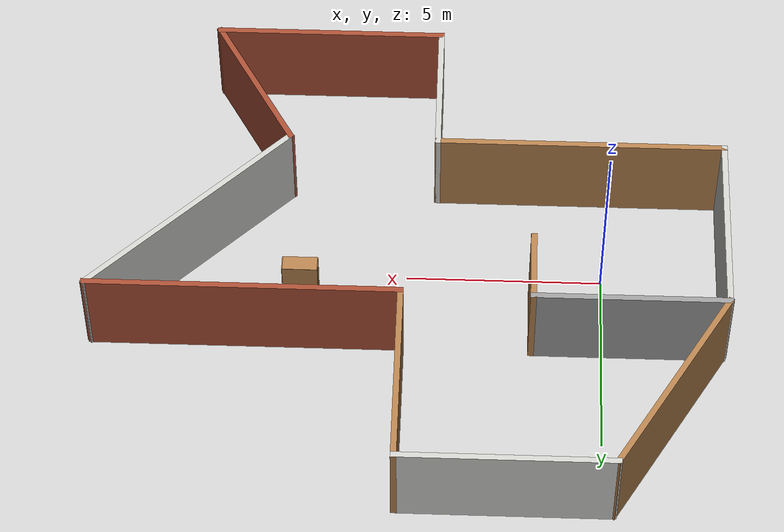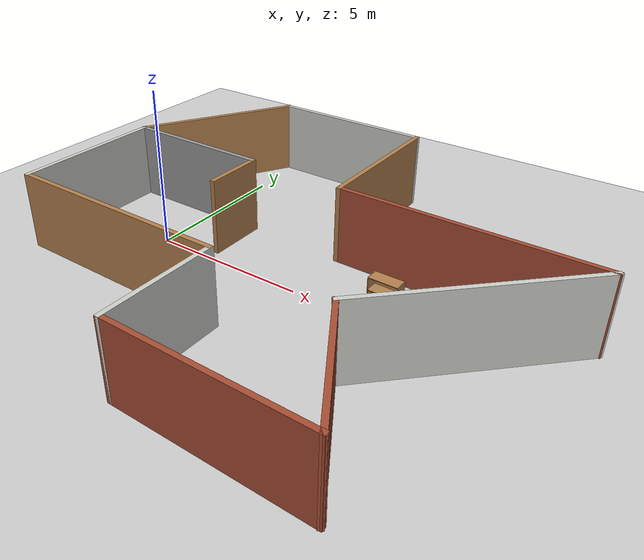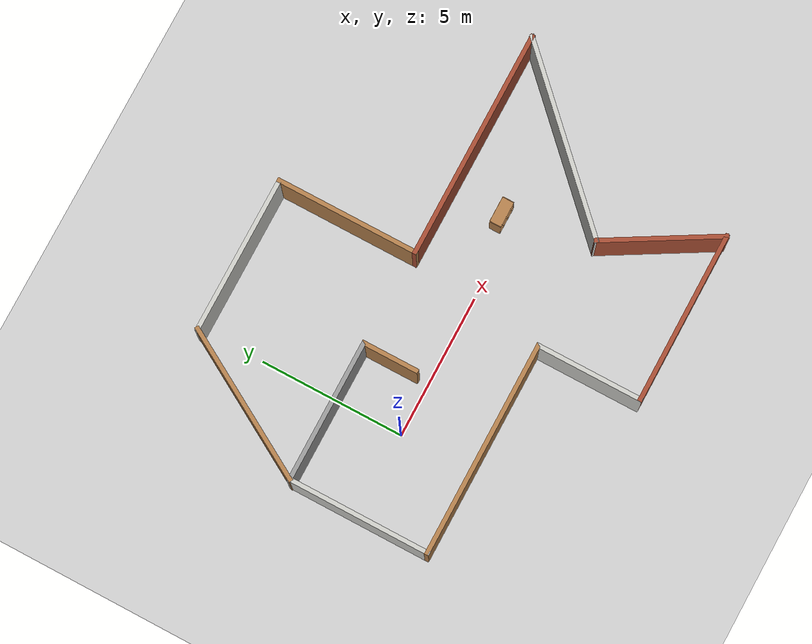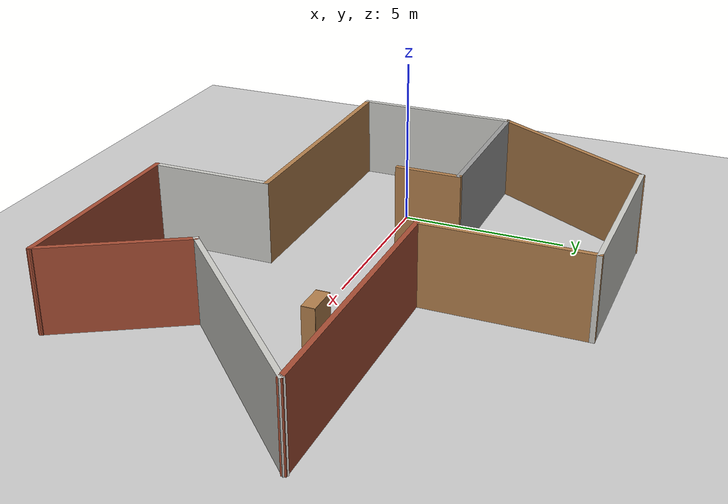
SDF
<sdf version="1.6">
 <world name="default">
  <light name="sun" type="directional">
   <pose>0 0 10 0 -0 0</pose>
   <diffuse>0.8 0.8 0.8 1</diffuse>
   <specular>0.2 0.2 0.2 1</specular>
   <attenuation>
    <range>1000</range>
    <constant>0.9</constant>
    <linear>0.01</linear>
    <quadratic>0.001</quadratic>
   </attenuation>
   <direction>-0.5 0.1 -0.9</direction>
  </light>
  <model name="ground_plane">
   <static>1</static>
   <link name="link">
    <collision name="collision">
     <geometry><plane><normal>0 0 1</normal><size>100 100</size></plane></geometry>
     <surface>
      <contact><collide_bitmask>65535</collide_bitmask></contact>
      <friction><ode><mu>100</mu><mu2>50</mu2></ode></friction>
     </surface>
    </collision>
    <visual name="visual">
     <cast_shadows>0</cast_shadows>
     <geometry><plane><normal>0 0 1</normal><size>100 100</size></plane></geometry>
     <material>
      <script><uri>file://media/materials/scripts/gazebo.material</uri><name>Gazebo/Grey</name></script>
     </material>
    </visual>
   </link>
  </model>
  <gravity>0 0 -9.8</gravity>
  <magnetic_field>6e-06 2.3e-05 -4.2e-05</magnetic_field>
  <atmosphere type="adiabatic"/>
  <physics name="default_physics" default="0" type="ode">
   <max_step_size>0.001</max_step_size>
   <real_time_factor>1</real_time_factor>
   <real_time_update_rate>1000</real_time_update_rate>
  </physics>
  <scene><ambient>0.4 0.4 0.4 1</ambient><background>0.7 0.7 0.7 1</background><shadows>1</shadows></scene>
  <audio><device>default</device></audio>
  <spherical_coordinates>
   <surface_model>EARTH_WGS84</surface_model>
   <latitude_deg>0</latitude_deg>
   <longitude_deg>0</longitude_deg>
   <elevation>0</elevation>
   <heading_deg>0</heading_deg>
  </spherical_coordinates>
  <model name="last_world">
   <pose>4.93439 0.423874 0 0 -0 0</pose>
   <link name="Wall_1">
    <collision name="Wall_1_Collision">
     <geometry><box><size>5 0.15 2.5</size></box></geometry>
     <pose>0 0 1.25 0 -0 0</pose>
    </collision>
    <visual name="Wall_1_Visual">
     <pose>0 0 1.25 0 -0 0</pose>
     <geometry><box><size>5 0.15 2.5</size></box></geometry>
     <material>
      <script><uri>file://media/materials/scripts/gazebo.material</uri><name>Gazebo/CeilingTiled</name></script>
      <ambient>1 1 1 1</ambient>
     </material>
     <meta><layer>0</layer></meta>
    </visual>
    <pose>-7.99859 -0.597247 0 0 -0 1.5708</pose>
   </link>
   <link name="Wall_10">
    <collision name="Wall_10_Collision">
     <geometry><box><size>7 0.15 2.5</size></box></geometry>
     <pose>0 0 1.25 0 -0 0</pose>
    </collision>
    <visual name="Wall_10_Visual">
     <pose>0 0 1.25 0 -0 0</pose>
     <geometry><box><size>7 0.15 2.5</size></box></geometry>
     <material>
      <script><uri>file://media/materials/scripts/gazebo.material</uri><name>Gazebo/CeilingTiled</name></script>
      <ambient>1 1 1 1</ambient>
     </material>
     <meta><layer>0</layer></meta>
    </visual>
    <pose>5.57325 -0.649703 0 0 -0 0.785398</pose>
   </link>
   <link name="Wall_11">
    <collision name="Wall_11_Collision">
     <geometry><box><size>8 0.15 2.5</size></box></geometry>
     <pose>0 0 1.25 0 -0 0</pose>
    </collision>
    <visual name="Wall_11_Visual">
     <pose>0 0 1.25 0 -0 0</pose>
     <geometry><box><size>8 0.15 2.5</size></box></geometry>
     <material>
      <script><uri>file://media/materials/scripts/gazebo.material</uri><name>Gazebo/Bricks</name></script>
      <ambient>1 1 1 1</ambient>
     </material>
     <meta><layer>0</layer></meta>
    </visual>
    <pose>4.07009 1.77214 0 0 -0 3.14159</pose>
   </link>
   <link name="Wall_17">
    <collision name="Wall_17_Collision">
     <geometry><box><size>5 0.15 2.5</size></box></geometry>
     <pose>0 0 1.25 0 -0 0</pose>
    </collision>
    <visual name="Wall_17_Visual">
     <pose>0 0 1.25 0 -0 0</pose>
     <geometry><box><size>5 0.15 2.5</size></box></geometry>
     <material>
      <script><uri>file://media/materials/scripts/gazebo.material</uri><name>Gazebo/Wood</name></script>
      <ambient>1 1 1 1</ambient>
     </material>
     <meta><layer>0</layer></meta>
    </visual>
    <pose>0.145088 4.19714 0 0 -0 1.5708</pose>
   </link>
   <link name="Wall_18">
    <collision name="Wall_18_Collision">
     <geometry><box><size>5.5 0.15 2.5</size></box></geometry>
     <pose>0 0 1.25 0 -0 0</pose>
    </collision>
    <visual name="Wall_18_Visual">
     <pose>0 0 1.25 0 -0 0</pose>
     <geometry><box><size>5.5 0.15 2.5</size></box></geometry>
     <material>
      <script><uri>file://media/materials/scripts/gazebo.material</uri><name>Gazebo/CeilingTiled</name></script>
      <ambient>1 1 1 1</ambient>
     </material>
     <meta><layer>0</layer></meta>
    </visual>
    <pose>-2.52991 6.62214 0 0 -0 3.14159</pose>
   </link>
   <link name="Wall_19">
    <collision name="Wall_19_Collision">
     <geometry><box><size>5.69895 0.15 2.5</size></box></geometry>
     <pose>0 0 1.25 0 -0 0</pose>
    </collision>
    <visual name="Wall_19_Visual">
     <pose>0 0 1.25 0 -0 0</pose>
     <geometry><box><size>5.69895 0.15 2.5</size></box></geometry>
     <material>
      <script><uri>file://media/materials/scripts/gazebo.material</uri><name>Gazebo/Wood</name></script>
      <ambient>1 1 1 1</ambient>
     </material>
     <meta><layer>0</layer></meta>
    </visual>
    <pose>-6.60175 4.22494 0 0 -0 -2.0984</pose>
   </link>
   <link name="Wall_2">
    <collision name="Wall_2_Collision">
     <geometry><box><size>5 0.15 2.5</size></box></geometry>
     <pose>0 0 1.25 0 -0 0</pose>
    </collision>
    <visual name="Wall_2_Visual">
     <pose>0 0 1.25 0 -0 0</pose>
     <geometry><box><size>5 0.15 2.5</size></box></geometry>
     <material>
      <script><uri>file://media/materials/scripts/gazebo.material</uri><name>Gazebo/Grey</name></script>
      <ambient>1 1 1 1</ambient>
     </material>
     <meta><layer>0</layer></meta>
    </visual>
    <pose>-5.57359 1.82775 0 0 -0 0</pose>
   </link>
   <link name="Wall_3">
    <collision name="Wall_3_Collision">
     <geometry><box><size>2 0.15 2.5</size></box></geometry>
     <pose>0 0 1.25 0 -0 0</pose>
    </collision>
    <visual name="Wall_3_Visual">
     <pose>0 0 1.25 0 -0 0</pose>
     <geometry><box><size>2 0.15 2.5</size></box></geometry>
     <material>
      <script><uri>file://media/materials/scripts/gazebo.material</uri><name>Gazebo/Wood</name></script>
      <ambient>1 1 1 1</ambient>
     </material>
     <meta><layer>0</layer></meta>
    </visual>
    <pose>-3.14859 0.902753 0 0 -0 -1.5708</pose>
   </link>
   <link name="Wall_5">
    <collision name="Wall_5_Collision">
     <geometry><box><size>7.5 0.15 2.5</size></box></geometry>
     <pose>0 0 1.25 0 -0 0</pose>
    </collision>
    <visual name="Wall_5_Visual">
     <pose>0 0 1.25 0 -0 0</pose>
     <geometry><box><size>7.5 0.15 2.5</size></box></geometry>
     <material>
      <script><uri>file://media/materials/scripts/gazebo.material</uri><name>Gazebo/Wood</name></script>
      <ambient>1 1 1 1</ambient>
     </material>
     <meta><layer>0</layer></meta>
    </visual>
    <pose>-4.32359 -3.02225 0 0 -0 0</pose>
   </link>
   <link name="Wall_7">
    <collision name="Wall_7_Collision">
     <geometry><box><size>3.75 0.15 2.5</size></box></geometry>
     <pose>0 0 1.25 0 -0 0</pose>
    </collision>
    <visual name="Wall_7_Visual">
     <pose>0 0 1.25 0 -0 0</pose>
     <geometry><box><size>3.75 0.15 2.5</size></box></geometry>
     <material>
      <script><uri>file://media/materials/scripts/gazebo.material</uri><name>Gazebo/CeilingTiled</name></script>
      <ambient>1 1 1 1</ambient>
     </material>
     <meta><layer>0</layer></meta>
    </visual>
    <pose>-0.648593 -4.82225 0 0 -0 -1.5708</pose>
   </link>
   <link name="Wall_8">
    <collision name="Wall_8_Collision">
     <geometry><box><size>6 0.15 2.5</size></box></geometry>
     <pose>0 0 1.25 0 -0 0</pose>
    </collision>
    <visual name="Wall_8_Visual">
     <pose>0 0 1.25 0 -0 0</pose>
     <geometry><box><size>6 0.15 2.5</size></box></geometry>
     <material>
      <script><uri>file://media/materials/scripts/gazebo.material</uri><name>Gazebo/Bricks</name></script>
      <ambient>1 1 1 1</ambient>
     </material>
     <meta><layer>0</layer></meta>
    </visual>
    <pose>2.27641 -6.62225 0 0 -0 0</pose>
   </link>
   <link name="Wall_9">
    <collision name="Wall_9_Collision">
     <geometry><box><size>4.25 0.15 2.5</size></box></geometry>
     <pose>0 0 1.25 0 -0 0</pose>
    </collision>
    <visual name="Wall_9_Visual">
     <pose>0 0 1.25 0 -0 0</pose>
     <geometry><box><size>4.25 0.15 2.5</size></box></geometry>
     <material>
      <script><uri>file://media/materials/scripts/gazebo.material</uri><name>Gazebo/Bricks</name></script>
      <ambient>1 1 1 1</ambient>
     </material>
     <meta><layer>0</layer></meta>
    </visual>
    <pose>4.17641 -4.84689 0 0 -0 2.0944</pose>
   </link>
   <static>1</static>
  </model>
  <model name="bookshelf">
   <static>1</static>
   <link name="link">
    <inertial><mass>1</mass></inertial>
    <collision name="back">
     <pose>0 0.005 0.6 0 -0 0</pose>
     <geometry><box><size>0.9 0.01 1.2</size></box></geometry>
    </collision>
    <visual name="visual1">
     <pose>0 0.005 0.6 0 -0 0</pose>
     <geometry><box><size>0.9 0.01 1.2</size></box></geometry>
     <material>
      <script><uri>file://media/materials/scripts/gazebo.material</uri><name>Gazebo/Wood</name></script>
     </material>
    </visual>
    <collision name="left_side">
     <pose>0.45 -0.195 0.6 0 -0 0</pose>
     <geometry><box><size>0.02 0.4 1.2</size></box></geometry>
    </collision>
    <visual name="visual2">
     <pose>0.45 -0.195 0.6 0 -0 0</pose>
     <geometry><box><size>0.02 0.4 1.2</size></box></geometry>
     <material>
      <script><uri>file://media/materials/scripts/gazebo.material</uri><name>Gazebo/Wood</name></script>
     </material>
    </visual>
    <collision name="right_side">
     <pose>-0.45 -0.195 0.6 0 -0 0</pose>
     <geometry><box><size>0.02 0.4 1.2</size></box></geometry>
    </collision>
    <visual name="visual3">
     <pose>-0.45 -0.195 0.6 0 -0 0</pose>
     <geometry><box><size>0.02 0.4 1.2</size></box></geometry>
     <material>
      <script><uri>file://media/materials/scripts/gazebo.material</uri><name>Gazebo/Wood</name></script>
     </material>
    </visual>
    <collision name="bottom">
     <pose>0 -0.195 0.03 0 -0 0</pose>
     <geometry><box><size>0.88 0.4 0.06</size></box></geometry>
    </collision>
    <visual name="visual4">
     <pose>0 -0.195 0.03 0 -0 0</pose>
     <geometry><box><size>0.88 0.4 0.06</size></box></geometry>
     <material>
      <script><uri>file://media/materials/scripts/gazebo.material</uri><name>Gazebo/Wood</name></script>
     </material>
    </visual>
    <collision name="top">
     <pose>0 -0.195 1.19 0 -0 0</pose>
     <geometry><box><size>0.88 0.4 0.02</size></box></geometry>
    </collision>
    <visual name="visual5">
     <pose>0 -0.195 1.19 0 -0 0</pose>
     <geometry><box><size>0.88 0.4 0.02</size></box></geometry>
     <material>
      <script><uri>file://media/materials/scripts/gazebo.material</uri><name>Gazebo/Wood</name></script>
     </material>
    </visual>
    <collision name="low_shelf">
     <pose>0 -0.195 0.43 0 -0 0</pose>
     <geometry><box><size>0.88 0.4 0.02</size></box></geometry>
    </collision>
    <visual name="visual6">
     <pose>0 -0.195 0.43 0 -0 0</pose>
     <geometry><box><size>0.88 0.4 0.02</size></box></geometry>
     <material>
      <script><uri>file://media/materials/scripts/gazebo.material</uri><name>Gazebo/Wood</name></script>
     </material>
    </visual>
    <collision name="high_shelf">
     <pose>0 -0.195 0.8 0 -0 0</pose>
     <geometry><box><size>0.88 0.4 0.02</size></box></geometry>
    </collision>
    <visual name="visual7">
     <pose>0 -0.195 0.8 0 -0 0</pose>
     <geometry><box><size>0.88 0.4 0.02</size></box></geometry>
     <material>
      <script><uri>file://media/materials/scripts/gazebo.material</uri><name>Gazebo/Wood</name></script>
     </material>
    </visual>
   </link>
   <pose>7.70433 0.683209 0 0 -0 0</pose>
  </model>
 </world>
</sdf>
